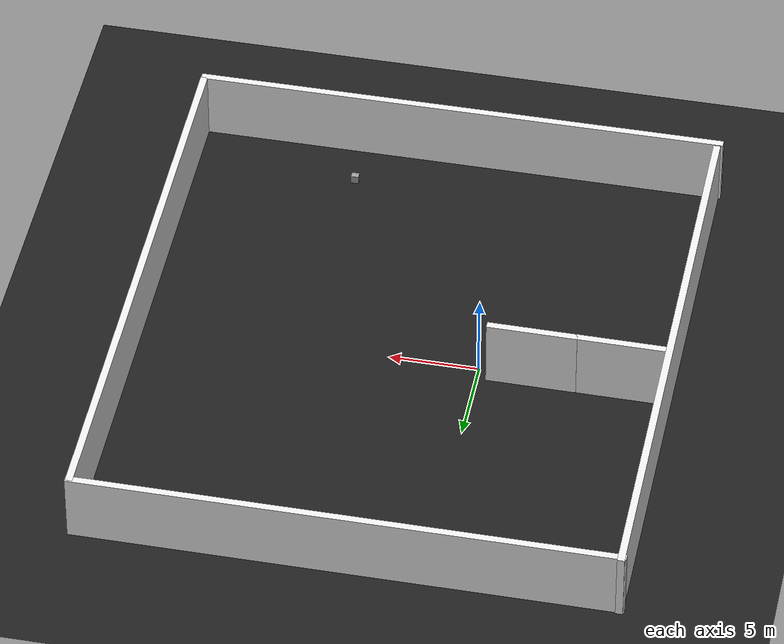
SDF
<sdf version="1.7">
 <world name="default">
  <plugin name="ros_link_attacher_plugin" filename="libgazebo_ros_link_attacher.so"/>
  <light name="sun" type="directional">
   <pose>0 0 10 0 -0 0</pose>
   <diffuse>0.8 0.8 0.8 1</diffuse>
   <specular>0.1 0.1 0.1 1</specular>
   <attenuation>
    <range>1000</range>
    <constant>0.9</constant>
    <linear>0.01</linear>
    <quadratic>0.001</quadratic>
   </attenuation>
   <direction>-0.5 0.5 -1</direction>
   <spot><inner_angle>0</inner_angle><outer_angle>0</outer_angle><falloff>0</falloff></spot>
  </light>
  <model name="ground_plane">
   <static>1</static>
   <link name="link">
    <collision name="collision">
     <geometry><plane><normal>0 0 1</normal><size>1000 1000</size></plane></geometry>
     <surface><friction><ode><mu>100</mu><mu2>50</mu2></ode></friction></surface>
    </collision>
    <visual name="visual">
     <cast_shadows>0</cast_shadows>
     <geometry><plane><normal>0 0 1</normal><size>100 100</size></plane></geometry>
     <material>
      <script><uri>file://media/materials/scripts/gazebo.material</uri><name>Gazebo/Black</name></script>
     </material>
    </visual>
   </link>
  </model>
  <model name="unit_box">
   <pose>9.75 -13.8 0.2375 0 -0 0</pose>
   <link name="link">
    <inertial>
     <mass>1</mass>
     <inertia>
      <ixx>0.166667</ixx>
      <ixy>0</ixy>
      <ixz>0</ixz>
      <iyy>0.166667</iyy>
      <iyz>0</iyz>
      <izz>0.166667</izz>
     </inertia>
    </inertial>
    <collision name="collision"><geometry><box><size>0.43 0.35 0.475</size></box></geometry></collision>
    <visual name="visual">
     <geometry><box><size>0.43 0.35 0.475</size></box></geometry>
     <material>
      <script><name>Gazebo/Grey</name><uri>file://media/materials/scripts/gazebo.material</uri></script>
     </material>
    </visual>
   </link>
   <gravity>0 0 0</gravity>
  </model>
  <gravity>0 0 -9.8</gravity>
  <magnetic_field>6e-06 2.3e-05 -4.2e-05</magnetic_field>
  <atmosphere type="adiabatic"/>
  <physics name="default_physics" default="0" type="ode">
   <max_step_size>0.001</max_step_size>
   <real_time_factor>1</real_time_factor>
   <real_time_update_rate>1000</real_time_update_rate>
  </physics>
  <scene><ambient>0.4 0.4 0.4 1</ambient><background>0.7 0.7 0.7 1</background><shadows>1</shadows></scene>
  <spherical_coordinates>
   <surface_model>EARTH_WGS84</surface_model>
   <latitude_deg>0</latitude_deg>
   <longitude_deg>0</longitude_deg>
   <elevation>0</elevation>
   <heading_deg>0</heading_deg>
  </spherical_coordinates>
  <model name="grey_wall_2_clone_clone">
   <static>1</static>
   <link name="link">
    <pose>0 0 1.4 0 -0 0</pose>
    <collision name="collision"><geometry><box><size>33 0.4 4</size></box></geometry></collision>
    <visual name="visual">
     <cast_shadows>0</cast_shadows>
     <geometry><box><size>33 0.4 4</size></box></geometry>
     <material>
      <script>
       <uri>model://grey_wall/materials/scripts</uri>
       <uri>model://grey_wall/materials/textures</uri>
       <name>Gazebo/White</name>
      </script>
     </material>
    </visual>
   </link>
   <pose>-10.559 0.323621 0.7 0 0 -1.56757</pose>
  </model>
  <model name="grey_wall_2_clone_clone_clone_1">
   <static>1</static>
   <link name="link">
    <pose>0 0 1.4 0 -0 0</pose>
    <collision name="collision"><geometry><box><size>33 0.4 4</size></box></geometry></collision>
    <visual name="visual">
     <cast_shadows>0</cast_shadows>
     <geometry><box><size>33 0.4 4</size></box></geometry>
     <material>
      <script>
       <uri>model://grey_wall/materials/scripts</uri>
       <uri>model://grey_wall/materials/textures</uri>
       <name>Gazebo/White</name>
      </script>
     </material>
    </visual>
   </link>
   <pose>18.9505 0.182432 0.7 0 0 -1.56757</pose>
  </model>
  <model name="grey_wall_2_clone_clone_0_clone">
   <static>1</static>
   <link name="link">
    <pose>0 0 1.4 0 -0 0</pose>
    <collision name="collision"><geometry><box><size>30 0.4 4</size></box></geometry></collision>
    <visual name="visual">
     <cast_shadows>0</cast_shadows>
     <geometry><box><size>30 0.4 4</size></box></geometry>
     <material>
      <script>
       <uri>model://grey_wall/materials/scripts</uri>
       <uri>model://grey_wall/materials/textures</uri>
       <name>Gazebo/White</name>
      </script>
     </material>
    </visual>
   </link>
   <pose>4.1737 -16.4305 0.7 0 0 -3.14126</pose>
  </model>
  <model name="grey_wall_1_clone_1_clone_6">
   <static>1</static>
   <link name="link">
    <pose>0 0 1.4 0 -0 0</pose>
    <collision name="collision"><geometry><box><size>5 0.4 4</size></box></geometry></collision>
    <visual name="visual">
     <cast_shadows>0</cast_shadows>
     <geometry><box><size>5 0.4 4</size></box></geometry>
     <material>
      <script>
       <uri>model://grey_wall/materials/scripts</uri>
       <uri>model://grey_wall/materials/textures</uri>
       <name>Gazebo/White</name>
      </script>
     </material>
    </visual>
   </link>
   <pose>-7.93327 0.669738 0.7 0 0 -0.00371</pose>
  </model>
  <model name="grey_wall_1_clone_1_clone_7">
   <static>1</static>
   <link name="link">
    <pose>0 0 1.4 0 -0 0</pose>
    <collision name="collision"><geometry><box><size>5 0.4 4</size></box></geometry></collision>
    <visual name="visual">
     <cast_shadows>0</cast_shadows>
     <geometry><box><size>5 0.4 4</size></box></geometry>
     <material>
      <script>
       <uri>model://grey_wall/materials/scripts</uri>
       <uri>model://grey_wall/materials/textures</uri>
       <name>Gazebo/White</name>
      </script>
     </material>
    </visual>
   </link>
   <pose>-3.01373 0.66286 0.7 0 0 -0.00371</pose>
  </model>
  <model name="grey_wall_2_clone_clone_0_clone_clone">
   <static>1</static>
   <link name="link">
    <pose>0 0 1.4 0 -0 0</pose>
    <collision name="collision"><geometry><box><size>30 0.4 4</size></box></geometry></collision>
    <visual name="visual">
     <cast_shadows>0</cast_shadows>
     <geometry><box><size>30 0.4 4</size></box></geometry>
     <material>
      <script>
       <uri>model://grey_wall/materials/scripts</uri>
       <uri>model://grey_wall/materials/textures</uri>
       <name>Gazebo/White</name>
      </script>
     </material>
    </visual>
   </link>
   <pose>4.11612 16.5564 0.7 0 0 -3.14126</pose>
  </model>
 </world>
</sdf>
